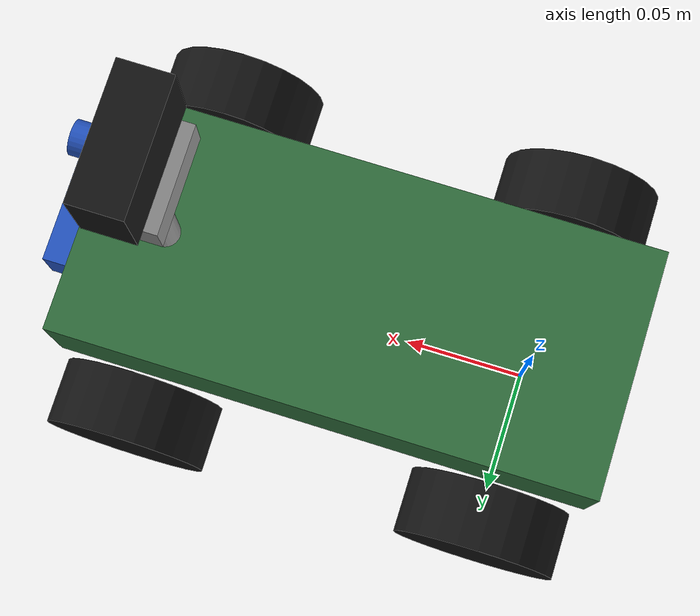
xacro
<?xml version="1.0"?>
<robot name="picar" xmlns:xacro="http://www.ros.org/wiki/xacro">

  <!-- ===== Dimensions (metres, radians). TODO: measure the real car ===== -->
  <xacro:property name="wheel_radius"     value="0.0325"/>  <!-- 65 mm wheels -->
  <xacro:property name="wheel_width"      value="0.026"/>
  <xacro:property name="wheel_base"       value="0.145"/>   <!-- rear axle to front axle -->
  <xacro:property name="wheel_separation" value="0.135"/>   <!-- left to right wheel centres -->
  <xacro:property name="kingpin_width"    value="0.110"/>   <!-- left to right steering pivots -->
  <xacro:property name="steering_limit"   value="0.60"/>    <!-- ~34 deg, servo end stops -->
  <xacro:property name="chassis_length"   value="0.220"/>
  <xacro:property name="chassis_width"    value="0.100"/>
  <xacro:property name="chassis_height"   value="0.040"/>
  <xacro:property name="head_x"           value="0.150"/>   <!-- pan axis, forward of rear axle -->
  <xacro:property name="mast_height"      value="0.070"/>   <!-- chassis top to pan joint -->

  <!-- ===== Masses (kg) ===== -->
  <xacro:property name="chassis_mass" value="0.90"/>
  <xacro:property name="wheel_mass"   value="0.04"/>

  <!-- ===== Materials ===== -->
  <material name="chassis_green"><color rgba="0.20 0.45 0.25 1"/></material>
  <material name="black"><color rgba="0.08 0.08 0.08 1"/></material>
  <material name="grey"><color rgba="0.55 0.55 0.55 1"/></material>
  <material name="sensor_blue"><color rgba="0.15 0.35 0.80 1"/></material>

  <!-- ===== Inertia helpers ===== -->
  <xacro:macro name="box_inertial" params="m x y z *origin">
    <inertial>
      <xacro:insert_block name="origin"/>
      <mass value="${m}"/>
      <inertia ixx="${m*(y*y+z*z)/12}" ixy="0" ixz="0"
               iyy="${m*(x*x+z*z)/12}" iyz="0"
               izz="${m*(x*x+y*y)/12}"/>
    </inertial>
  </xacro:macro>

  <xacro:macro name="cylinder_inertial" params="m r h *origin">
    <inertial>
      <xacro:insert_block name="origin"/>
      <mass value="${m}"/>
      <inertia ixx="${m*(3*r*r+h*h)/12}" ixy="0" ixz="0"
               iyy="${m*(3*r*r+h*h)/12}" iyz="0"
               izz="${m*r*r/2}"/>
    </inertial>
  </xacro:macro>

  <!-- A wheel spinning about its local y axis -->
  <xacro:macro name="wheel" params="name">
    <link name="${name}">
      <visual>
        <origin xyz="0 0 0" rpy="${pi/2} 0 0"/>
        <geometry><cylinder radius="${wheel_radius}" length="${wheel_width}"/></geometry>
        <material name="black"/>
      </visual>
      <collision>
        <origin xyz="0 0 0" rpy="${pi/2} 0 0"/>
        <geometry><cylinder radius="${wheel_radius}" length="${wheel_width}"/></geometry>
      </collision>
      <xacro:cylinder_inertial m="${wheel_mass}" r="${wheel_radius}" h="${wheel_width}">
        <origin xyz="0 0 0" rpy="${pi/2} 0 0"/>
      </xacro:cylinder_inertial>
    </link>
    <gazebo reference="${name}">
      <mu1>1.0</mu1>
      <mu2>1.0</mu2>
    </gazebo>
  </xacro:macro>

  <!-- ===== Body ===== -->
  <link name="base_footprint"/>

  <link name="base_link">
    <visual>
      <origin xyz="${wheel_base/2} 0 ${chassis_height/2}" rpy="0 0 0"/>
      <geometry><box size="${chassis_length} ${chassis_width} ${chassis_height}"/></geometry>
      <material name="chassis_green"/>
    </visual>
    <collision>
      <origin xyz="${wheel_base/2} 0 ${chassis_height/2}" rpy="0 0 0"/>
      <geometry><box size="${chassis_length} ${chassis_width} ${chassis_height}"/></geometry>
    </collision>
    <!-- camera mast -->
    <visual>
      <origin xyz="${head_x} 0 ${chassis_height + mast_height/2}" rpy="0 0 0"/>
      <geometry><cylinder radius="0.006" length="${mast_height}"/></geometry>
      <material name="grey"/>
    </visual>
    <xacro:box_inertial m="${chassis_mass}" x="${chassis_length}" y="${chassis_width}" z="${chassis_height}">
      <origin xyz="${wheel_base/2} 0 ${chassis_height/2}" rpy="0 0 0"/>
    </xacro:box_inertial>
  </link>

  <joint name="base_joint" type="fixed">
    <parent link="base_footprint"/>
    <child link="base_link"/>
    <origin xyz="0 0 ${wheel_radius}" rpy="0 0 0"/>
  </joint>

  <!-- ===== Rear wheels (driven) ===== -->
  <xacro:wheel name="rear_left_wheel"/>
  <joint name="rear_left_wheel_joint" type="continuous">
    <parent link="base_link"/>
    <child link="rear_left_wheel"/>
    <origin xyz="0 ${wheel_separation/2} 0" rpy="0 0 0"/>
    <axis xyz="0 1 0"/>
  </joint>

  <xacro:wheel name="rear_right_wheel"/>
  <joint name="rear_right_wheel_joint" type="continuous">
    <parent link="base_link"/>
    <child link="rear_right_wheel"/>
    <origin xyz="0 ${-wheel_separation/2} 0" rpy="0 0 0"/>
    <axis xyz="0 1 0"/>
  </joint>

  <!-- ===== Front steering + free-spinning front wheels ===== -->
  <xacro:macro name="front_corner" params="side y_sign">
    <link name="front_${side}_steer_link">
      <xacro:box_inertial m="0.02" x="0.02" y="0.02" z="0.02">
        <origin xyz="0 0 0" rpy="0 0 0"/>
      </xacro:box_inertial>
    </link>
    <joint name="front_${side}_steer_joint" type="revolute">
      <parent link="base_link"/>
      <child link="front_${side}_steer_link"/>
      <origin xyz="${wheel_base} ${y_sign*kingpin_width/2} 0" rpy="0 0 0"/>
      <axis xyz="0 0 1"/>
      <limit lower="${-steering_limit}" upper="${steering_limit}" effort="5.0" velocity="6.0"/>
    </joint>

    <xacro:wheel name="front_${side}_wheel"/>
    <joint name="front_${side}_wheel_joint" type="continuous">
      <parent link="front_${side}_steer_link"/>
      <child link="front_${side}_wheel"/>
      <origin xyz="0 ${y_sign*(wheel_separation - kingpin_width)/2} 0" rpy="0 0 0"/>
      <axis xyz="0 1 0"/>
    </joint>
  </xacro:macro>

  <xacro:front_corner side="left" y_sign="1"/>
  <xacro:front_corner side="right" y_sign="-1"/>

  <!-- ===== Pan/tilt camera head ===== -->
  <link name="head_pan_link">
    <visual>
      <origin xyz="0 0 0.0075" rpy="0 0 0"/>
      <geometry><box size="0.030 0.040 0.015"/></geometry>
      <material name="grey"/>
    </visual>
    <xacro:box_inertial m="0.03" x="0.030" y="0.040" z="0.015">
      <origin xyz="0 0 0.0075" rpy="0 0 0"/>
    </xacro:box_inertial>
  </link>
  <joint name="head_pan_joint" type="revolute">
    <parent link="base_link"/>
    <child link="head_pan_link"/>
    <origin xyz="${head_x} 0 ${chassis_height + mast_height}" rpy="0 0 0"/>
    <axis xyz="0 0 1"/>
    <limit lower="${-pi/2}" upper="${pi/2}" effort="1.0" velocity="3.0"/>
  </joint>

  <link name="head_tilt_link">
    <visual>
      <geometry><box size="0.020 0.050 0.030"/></geometry>
      <material name="black"/>
    </visual>
    <xacro:box_inertial m="0.03" x="0.020" y="0.050" z="0.030">
      <origin xyz="0 0 0" rpy="0 0 0"/>
    </xacro:box_inertial>
  </link>
  <!-- axis -y so that a positive angle tilts the camera up -->
  <joint name="head_tilt_joint" type="revolute">
    <parent link="head_pan_link"/>
    <child link="head_tilt_link"/>
    <origin xyz="0 0 0.030" rpy="0 0 0"/>
    <axis xyz="0 -1 0"/>
    <limit lower="-0.7" upper="0.7" effort="1.0" velocity="3.0"/>
  </joint>

  <link name="camera_link">
    <visual>
      <origin xyz="0.003 0 0" rpy="0 ${pi/2} 0"/>
      <geometry><cylinder radius="0.006" length="0.006"/></geometry>
      <material name="sensor_blue"/>
    </visual>
    <xacro:box_inertial m="0.005" x="0.01" y="0.01" z="0.01">
      <origin xyz="0 0 0" rpy="0 0 0"/>
    </xacro:box_inertial>
  </link>
  <joint name="camera_joint" type="fixed">
    <parent link="head_tilt_link"/>
    <child link="camera_link"/>
    <origin xyz="0.012 0 0" rpy="0 0 0"/>
  </joint>

  <!-- ROS optical frame: z forward, x right, y down -->
  <link name="camera_optical_link"/>
  <joint name="camera_optical_joint" type="fixed">
    <parent link="camera_link"/>
    <child link="camera_optical_link"/>
    <origin xyz="0 0 0" rpy="${-pi/2} 0 ${-pi/2}"/>
  </joint>

  <!-- ===== Ultrasonic sensor (front of chassis, facing forward) ===== -->
  <link name="ultrasonic_link">
    <visual>
      <geometry><box size="0.012 0.045 0.020"/></geometry>
      <material name="sensor_blue"/>
    </visual>
    <xacro:box_inertial m="0.01" x="0.012" y="0.045" z="0.020">
      <origin xyz="0 0 0" rpy="0 0 0"/>
    </xacro:box_inertial>
  </link>
  <joint name="ultrasonic_joint" type="fixed">
    <parent link="base_link"/>
    <child link="ultrasonic_link"/>
    <origin xyz="${wheel_base/2 + chassis_length/2 + 0.006} 0 ${chassis_height/2}" rpy="0 0 0"/>
  </joint>

  <!-- ===================== Gazebo sensors ===================== -->

  <!-- Pi camera: about 62 deg horizontal field of view -->
  <gazebo reference="camera_link">
    <sensor name="camera" type="camera">
      <always_on>true</always_on>
      <update_rate>10</update_rate>
      <visualize>true</visualize>
      <topic>/camera/image_raw</topic>
      <gz_frame_id>camera_optical_link</gz_frame_id>
      <camera>
        <horizontal_fov>1.085</horizontal_fov>
        <image>
          <width>640</width>
          <height>480</height>
          <format>R8G8B8</format>
        </image>
        <clip>
          <near>0.03</near>
          <far>20</far>
        </clip>
      </camera>
    </sensor>
  </gazebo>

  <gazebo reference="ultrasonic_link">
    <sensor name="ultrasonic" type="gpu_lidar">
      <always_on>true</always_on>
      <update_rate>10</update_rate>
      <visualize>false</visualize>
      <topic>/ultrasonic/range</topic>
      <gz_frame_id>ultrasonic_link</gz_frame_id>
      <lidar>
        <scan>
          <horizontal>
            <samples>15</samples>
            <resolution>1</resolution>
            <min_angle>-0.26</min_angle>
            <max_angle>0.26</max_angle>
          </horizontal>
        </scan>
        <range>
          <min>0.02</min>
          <max>4.0</max>
          <resolution>0.01</resolution>
        </range>
      </lidar>
    </sensor>
  </gazebo>

  <!-- ===================== Gazebo controllers ===================== -->
  <gazebo>
    <!-- Rear-drive Ackermann: takes Twist (m/s, rad/s yaw rate) on /sim/cmd_vel -->
    <plugin filename="gz-sim-ackermann-steering-system"
            name="gz::sim::systems::AckermannSteering">
      <left_joint>rear_left_wheel_joint</left_joint>
      <right_joint>rear_right_wheel_joint</right_joint>
      <left_steering_joint>front_left_steer_joint</left_steering_joint>
      <right_steering_joint>front_right_steer_joint</right_steering_joint>
      <kingpin_width>${kingpin_width}</kingpin_width>
      <steering_limit>${steering_limit}</steering_limit>
      <wheel_base>${wheel_base}</wheel_base>
      <wheel_separation>${wheel_separation}</wheel_separation>
      <wheel_radius>${wheel_radius}</wheel_radius>
      <steer_p_gain>8.0</steer_p_gain>
      <min_velocity>-0.8</min_velocity>
      <max_velocity>0.8</max_velocity>
      <min_acceleration>-3.0</min_acceleration>
      <max_acceleration>3.0</max_acceleration>
      <topic>/sim/cmd_vel</topic>
      <odom_topic>/sim/odom</odom_topic>
      <tf_topic>/sim/tf</tf_topic>
      <frame_id>odom</frame_id>
      <child_frame_id>base_footprint</child_frame_id>
      <odom_publish_frequency>30</odom_publish_frequency>
    </plugin>

      <!-- Head servos: target angle in radians (std_msgs/Float64).
        Torque (PID) control: with velocity commands a joint that reaches its
        limit stays stuck there. -->
        <plugin filename="gz-sim-joint-position-controller-system"
            name="gz::sim::systems::JointPositionController">
        <joint_name>head_pan_joint</joint_name>
        <topic>/sim/head_pan</topic>
        <p_gain>0.1</p_gain>
        <i_gain>0.0</i_gain>
        <d_gain>0.003</d_gain>
        <cmd_max>0.05</cmd_max>
        <cmd_min>-0.05</cmd_min>
    </plugin>

    <plugin filename="gz-sim-joint-position-controller-system"
            name="gz::sim::systems::JointPositionController">
      <joint_name>head_tilt_joint</joint_name>
      <topic>/sim/head_tilt</topic>
      <p_gain>0.1</p_gain>
      <i_gain>0.0</i_gain>
      <d_gain>0.002</d_gain>
      <cmd_max>0.05</cmd_max>
      <cmd_min>-0.05</cmd_min>
    </plugin>
    <!-- Joint angles for robot_state_publisher / RViz -->
    <plugin filename="gz-sim-joint-state-publisher-system"
            name="gz::sim::systems::JointStatePublisher">
      <topic>/sim/joint_states</topic>
    </plugin>
  </gazebo>

</robot>
